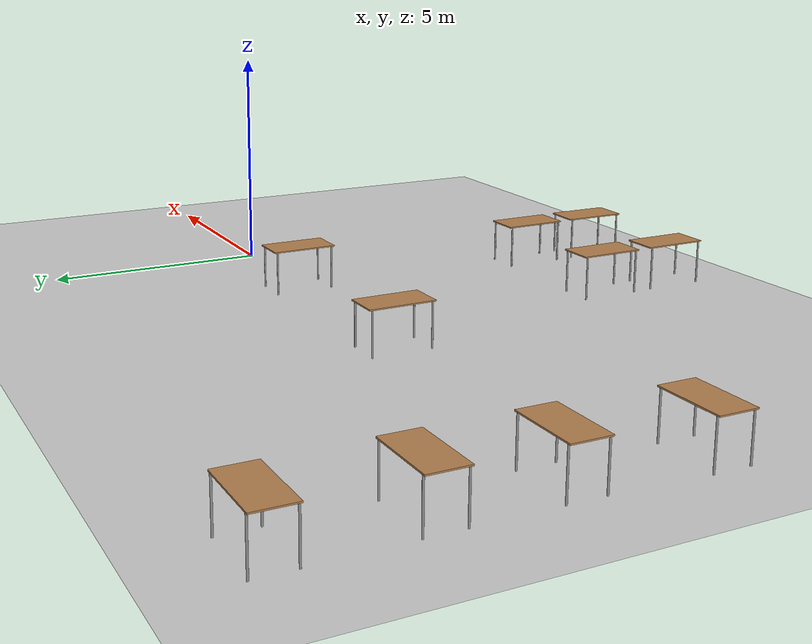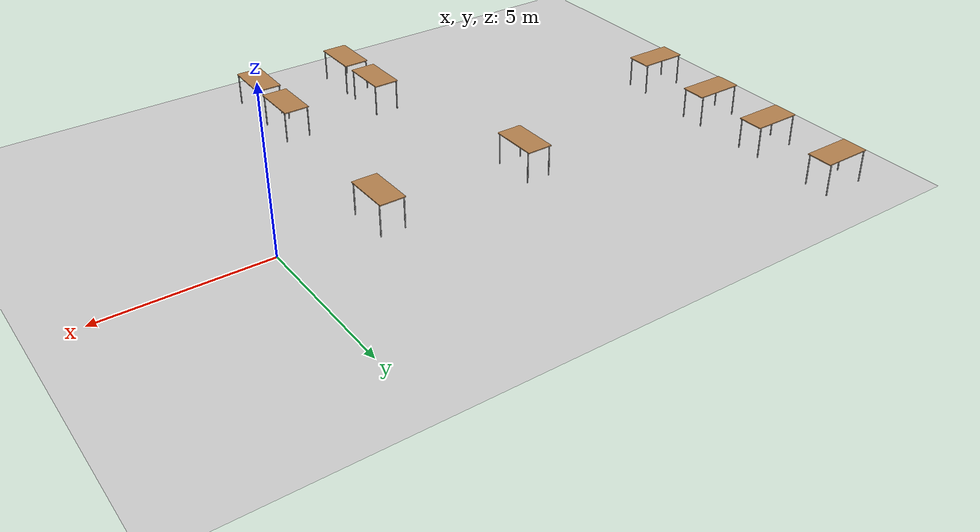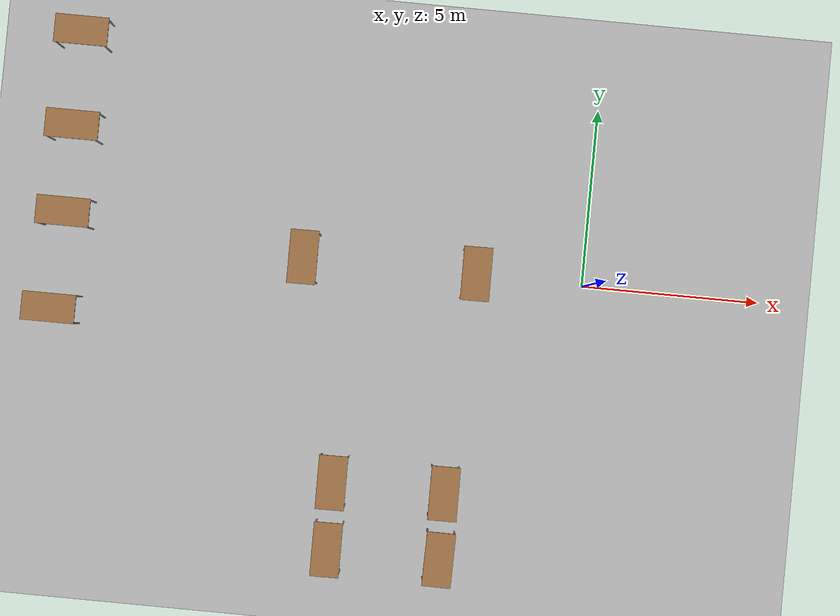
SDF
<sdf version="1.7">
 <world name="default">
  <model name="ground_plane">
   <static>1</static>
   <link name="link">
    <collision name="collision">
     <geometry><plane><normal>0 0 1</normal><size>100 100</size></plane></geometry>
     <surface><friction><ode><mu>100</mu><mu2>50</mu2></ode></friction></surface>
    </collision>
    <visual name="visual">
     <cast_shadows>0</cast_shadows>
     <geometry><plane><normal>0 0 1</normal><size>100 100</size></plane></geometry>
     <material>
      <script><uri>file://media/materials/scripts/gazebo.material</uri><name>Gazebo/Grey</name></script>
     </material>
    </visual>
   </link>
  </model>
  <model name="table">
   <static>1</static>
   <link name="link">
    <collision name="surface">
     <pose>0 0 1 0 -0 0</pose>
     <geometry><box><size>1.5 0.8 0.03</size></box></geometry>
     <surface><friction><ode><mu>0.6</mu><mu2>0.6</mu2></ode></friction></surface>
    </collision>
    <visual name="visual1">
     <pose>0 0 1 0 -0 0</pose>
     <geometry><box><size>1.5 0.8 0.03</size></box></geometry>
     <material>
      <script><uri>file://media/materials/scripts/gazebo.material</uri><name>Gazebo/Wood</name></script>
     </material>
    </visual>
    <collision name="front_left_leg">
     <pose>0.68 0.38 0.5 0 -0 0</pose>
     <geometry><cylinder><radius>0.02</radius><length>1</length></cylinder></geometry>
    </collision>
    <visual name="front_left_leg">
     <pose>0.68 0.38 0.5 0 -0 0</pose>
     <geometry><cylinder><radius>0.02</radius><length>1</length></cylinder></geometry>
     <material>
      <script><uri>file://media/materials/scripts/gazebo.material</uri><name>Gazebo/Grey</name></script>
     </material>
    </visual>
    <collision name="front_right_leg">
     <pose>0.68 -0.38 0.5 0 -0 0</pose>
     <geometry><cylinder><radius>0.02</radius><length>1</length></cylinder></geometry>
    </collision>
    <visual name="front_right_leg">
     <pose>0.68 -0.38 0.5 0 -0 0</pose>
     <geometry><cylinder><radius>0.02</radius><length>1</length></cylinder></geometry>
     <material>
      <script><uri>file://media/materials/scripts/gazebo.material</uri><name>Gazebo/Grey</name></script>
     </material>
    </visual>
    <collision name="back_right_leg">
     <pose>-0.68 -0.38 0.5 0 -0 0</pose>
     <geometry><cylinder><radius>0.02</radius><length>1</length></cylinder></geometry>
    </collision>
    <visual name="back_right_leg">
     <pose>-0.68 -0.38 0.5 0 -0 0</pose>
     <geometry><cylinder><radius>0.02</radius><length>1</length></cylinder></geometry>
     <material>
      <script><uri>file://media/materials/scripts/gazebo.material</uri><name>Gazebo/Grey</name></script>
     </material>
    </visual>
    <collision name="back_left_leg">
     <pose>-0.68 0.38 0.5 0 -0 0</pose>
     <geometry><cylinder><radius>0.02</radius><length>1</length></cylinder></geometry>
    </collision>
    <visual name="back_left_leg">
     <pose>-0.68 0.38 0.5 0 -0 0</pose>
     <geometry><cylinder><radius>0.02</radius><length>1</length></cylinder></geometry>
     <material>
      <script><uri>file://media/materials/scripts/gazebo.material</uri><name>Gazebo/Grey</name></script>
     </material>
    </visual>
   </link>
   <pose>-14.64 5.75533 0 0 -0 0</pose>
  </model>
  <model name="table_clone">
   <static>1</static>
   <link name="link">
    <collision name="surface">
     <pose>0 0 1 0 -0 0</pose>
     <geometry><box><size>1.5 0.8 0.03</size></box></geometry>
     <surface><friction><ode><mu>0.6</mu><mu2>0.6</mu2></ode></friction></surface>
    </collision>
    <visual name="visual1">
     <pose>0 0 1 0 -0 0</pose>
     <geometry><box><size>1.5 0.8 0.03</size></box></geometry>
     <material>
      <script><uri>file://media/materials/scripts/gazebo.material</uri><name>Gazebo/Wood</name></script>
     </material>
    </visual>
    <collision name="front_left_leg">
     <pose>0.68 0.38 0.5 0 -0 0</pose>
     <geometry><cylinder><radius>0.02</radius><length>1</length></cylinder></geometry>
    </collision>
    <visual name="front_left_leg">
     <pose>0.68 0.38 0.5 0 -0 0</pose>
     <geometry><cylinder><radius>0.02</radius><length>1</length></cylinder></geometry>
     <material>
      <script><uri>file://media/materials/scripts/gazebo.material</uri><name>Gazebo/Grey</name></script>
     </material>
    </visual>
    <collision name="front_right_leg">
     <pose>0.68 -0.38 0.5 0 -0 0</pose>
     <geometry><cylinder><radius>0.02</radius><length>1</length></cylinder></geometry>
    </collision>
    <visual name="front_right_leg">
     <pose>0.68 -0.38 0.5 0 -0 0</pose>
     <geometry><cylinder><radius>0.02</radius><length>1</length></cylinder></geometry>
     <material>
      <script><uri>file://media/materials/scripts/gazebo.material</uri><name>Gazebo/Grey</name></script>
     </material>
    </visual>
    <collision name="back_right_leg">
     <pose>-0.68 -0.38 0.5 0 -0 0</pose>
     <geometry><cylinder><radius>0.02</radius><length>1</length></cylinder></geometry>
    </collision>
    <visual name="back_right_leg">
     <pose>-0.68 -0.38 0.5 0 -0 0</pose>
     <geometry><cylinder><radius>0.02</radius><length>1</length></cylinder></geometry>
     <material>
      <script><uri>file://media/materials/scripts/gazebo.material</uri><name>Gazebo/Grey</name></script>
     </material>
    </visual>
    <collision name="back_left_leg">
     <pose>-0.68 0.38 0.5 0 -0 0</pose>
     <geometry><cylinder><radius>0.02</radius><length>1</length></cylinder></geometry>
    </collision>
    <visual name="back_left_leg">
     <pose>-0.68 0.38 0.5 0 -0 0</pose>
     <geometry><cylinder><radius>0.02</radius><length>1</length></cylinder></geometry>
     <material>
      <script><uri>file://media/materials/scripts/gazebo.material</uri><name>Gazebo/Grey</name></script>
     </material>
    </visual>
   </link>
   <pose>-14.6419 3.11969 0 0 -0 0</pose>
  </model>
  <model name="table_clone_0">
   <static>1</static>
   <link name="link">
    <collision name="surface">
     <pose>0 0 1 0 -0 0</pose>
     <geometry><box><size>1.5 0.8 0.03</size></box></geometry>
     <surface><friction><ode><mu>0.6</mu><mu2>0.6</mu2></ode></friction></surface>
    </collision>
    <visual name="visual1">
     <pose>0 0 1 0 -0 0</pose>
     <geometry><box><size>1.5 0.8 0.03</size></box></geometry>
     <material>
      <script><uri>file://media/materials/scripts/gazebo.material</uri><name>Gazebo/Wood</name></script>
     </material>
    </visual>
    <collision name="front_left_leg">
     <pose>0.68 0.38 0.5 0 -0 0</pose>
     <geometry><cylinder><radius>0.02</radius><length>1</length></cylinder></geometry>
    </collision>
    <visual name="front_left_leg">
     <pose>0.68 0.38 0.5 0 -0 0</pose>
     <geometry><cylinder><radius>0.02</radius><length>1</length></cylinder></geometry>
     <material>
      <script><uri>file://media/materials/scripts/gazebo.material</uri><name>Gazebo/Grey</name></script>
     </material>
    </visual>
    <collision name="front_right_leg">
     <pose>0.68 -0.38 0.5 0 -0 0</pose>
     <geometry><cylinder><radius>0.02</radius><length>1</length></cylinder></geometry>
    </collision>
    <visual name="front_right_leg">
     <pose>0.68 -0.38 0.5 0 -0 0</pose>
     <geometry><cylinder><radius>0.02</radius><length>1</length></cylinder></geometry>
     <material>
      <script><uri>file://media/materials/scripts/gazebo.material</uri><name>Gazebo/Grey</name></script>
     </material>
    </visual>
    <collision name="back_right_leg">
     <pose>-0.68 -0.38 0.5 0 -0 0</pose>
     <geometry><cylinder><radius>0.02</radius><length>1</length></cylinder></geometry>
    </collision>
    <visual name="back_right_leg">
     <pose>-0.68 -0.38 0.5 0 -0 0</pose>
     <geometry><cylinder><radius>0.02</radius><length>1</length></cylinder></geometry>
     <material>
      <script><uri>file://media/materials/scripts/gazebo.material</uri><name>Gazebo/Grey</name></script>
     </material>
    </visual>
    <collision name="back_left_leg">
     <pose>-0.68 0.38 0.5 0 -0 0</pose>
     <geometry><cylinder><radius>0.02</radius><length>1</length></cylinder></geometry>
    </collision>
    <visual name="back_left_leg">
     <pose>-0.68 0.38 0.5 0 -0 0</pose>
     <geometry><cylinder><radius>0.02</radius><length>1</length></cylinder></geometry>
     <material>
      <script><uri>file://media/materials/scripts/gazebo.material</uri><name>Gazebo/Grey</name></script>
     </material>
    </visual>
   </link>
   <pose>-14.6602 0.691653 0 0 -0 0</pose>
  </model>
  <model name="table_clone_1">
   <static>1</static>
   <link name="link">
    <collision name="surface">
     <pose>0 0 1 0 -0 0</pose>
     <geometry><box><size>1.5 0.8 0.03</size></box></geometry>
     <surface><friction><ode><mu>0.6</mu><mu2>0.6</mu2></ode></friction></surface>
    </collision>
    <visual name="visual1">
     <pose>0 0 1 0 -0 0</pose>
     <geometry><box><size>1.5 0.8 0.03</size></box></geometry>
     <material>
      <script><uri>file://media/materials/scripts/gazebo.material</uri><name>Gazebo/Wood</name></script>
     </material>
    </visual>
    <collision name="front_left_leg">
     <pose>0.68 0.38 0.5 0 -0 0</pose>
     <geometry><cylinder><radius>0.02</radius><length>1</length></cylinder></geometry>
    </collision>
    <visual name="front_left_leg">
     <pose>0.68 0.38 0.5 0 -0 0</pose>
     <geometry><cylinder><radius>0.02</radius><length>1</length></cylinder></geometry>
     <material>
      <script><uri>file://media/materials/scripts/gazebo.material</uri><name>Gazebo/Grey</name></script>
     </material>
    </visual>
    <collision name="front_right_leg">
     <pose>0.68 -0.38 0.5 0 -0 0</pose>
     <geometry><cylinder><radius>0.02</radius><length>1</length></cylinder></geometry>
    </collision>
    <visual name="front_right_leg">
     <pose>0.68 -0.38 0.5 0 -0 0</pose>
     <geometry><cylinder><radius>0.02</radius><length>1</length></cylinder></geometry>
     <material>
      <script><uri>file://media/materials/scripts/gazebo.material</uri><name>Gazebo/Grey</name></script>
     </material>
    </visual>
    <collision name="back_right_leg">
     <pose>-0.68 -0.38 0.5 0 -0 0</pose>
     <geometry><cylinder><radius>0.02</radius><length>1</length></cylinder></geometry>
    </collision>
    <visual name="back_right_leg">
     <pose>-0.68 -0.38 0.5 0 -0 0</pose>
     <geometry><cylinder><radius>0.02</radius><length>1</length></cylinder></geometry>
     <material>
      <script><uri>file://media/materials/scripts/gazebo.material</uri><name>Gazebo/Grey</name></script>
     </material>
    </visual>
    <collision name="back_left_leg">
     <pose>-0.68 0.38 0.5 0 -0 0</pose>
     <geometry><cylinder><radius>0.02</radius><length>1</length></cylinder></geometry>
    </collision>
    <visual name="back_left_leg">
     <pose>-0.68 0.38 0.5 0 -0 0</pose>
     <geometry><cylinder><radius>0.02</radius><length>1</length></cylinder></geometry>
     <material>
      <script><uri>file://media/materials/scripts/gazebo.material</uri><name>Gazebo/Grey</name></script>
     </material>
    </visual>
   </link>
   <pose>-14.7946 -2.00538 0 0 -0 0</pose>
  </model>
  <model name="table_clone_2">
   <static>1</static>
   <link name="link">
    <collision name="surface">
     <pose>0 0 1 0 -0 0</pose>
     <geometry><box><size>1.5 0.8 0.03</size></box></geometry>
     <surface><friction><ode><mu>0.6</mu><mu2>0.6</mu2></ode></friction></surface>
    </collision>
    <visual name="visual1">
     <pose>0 0 1 0 -0 0</pose>
     <geometry><box><size>1.5 0.8 0.03</size></box></geometry>
     <material>
      <script><uri>file://media/materials/scripts/gazebo.material</uri><name>Gazebo/Wood</name></script>
     </material>
    </visual>
    <collision name="front_left_leg">
     <pose>0.68 0.38 0.5 0 -0 0</pose>
     <geometry><cylinder><radius>0.02</radius><length>1</length></cylinder></geometry>
    </collision>
    <visual name="front_left_leg">
     <pose>0.68 0.38 0.5 0 -0 0</pose>
     <geometry><cylinder><radius>0.02</radius><length>1</length></cylinder></geometry>
     <material>
      <script><uri>file://media/materials/scripts/gazebo.material</uri><name>Gazebo/Grey</name></script>
     </material>
    </visual>
    <collision name="front_right_leg">
     <pose>0.68 -0.38 0.5 0 -0 0</pose>
     <geometry><cylinder><radius>0.02</radius><length>1</length></cylinder></geometry>
    </collision>
    <visual name="front_right_leg">
     <pose>0.68 -0.38 0.5 0 -0 0</pose>
     <geometry><cylinder><radius>0.02</radius><length>1</length></cylinder></geometry>
     <material>
      <script><uri>file://media/materials/scripts/gazebo.material</uri><name>Gazebo/Grey</name></script>
     </material>
    </visual>
    <collision name="back_right_leg">
     <pose>-0.68 -0.38 0.5 0 -0 0</pose>
     <geometry><cylinder><radius>0.02</radius><length>1</length></cylinder></geometry>
    </collision>
    <visual name="back_right_leg">
     <pose>-0.68 -0.38 0.5 0 -0 0</pose>
     <geometry><cylinder><radius>0.02</radius><length>1</length></cylinder></geometry>
     <material>
      <script><uri>file://media/materials/scripts/gazebo.material</uri><name>Gazebo/Grey</name></script>
     </material>
    </visual>
    <collision name="back_left_leg">
     <pose>-0.68 0.38 0.5 0 -0 0</pose>
     <geometry><cylinder><radius>0.02</radius><length>1</length></cylinder></geometry>
    </collision>
    <visual name="back_left_leg">
     <pose>-0.68 0.38 0.5 0 -0 0</pose>
     <geometry><cylinder><radius>0.02</radius><length>1</length></cylinder></geometry>
     <material>
      <script><uri>file://media/materials/scripts/gazebo.material</uri><name>Gazebo/Grey</name></script>
     </material>
    </visual>
   </link>
   <pose>-6.48162 -7.94294 0 0 0 -1.56333</pose>
  </model>
  <model name="table_clone_3">
   <static>1</static>
   <link name="link">
    <collision name="surface">
     <pose>0 0 1 0 -0 0</pose>
     <geometry><box><size>1.5 0.8 0.03</size></box></geometry>
     <surface><friction><ode><mu>0.6</mu><mu2>0.6</mu2></ode></friction></surface>
    </collision>
    <visual name="visual1">
     <pose>0 0 1 0 -0 0</pose>
     <geometry><box><size>1.5 0.8 0.03</size></box></geometry>
     <material>
      <script><uri>file://media/materials/scripts/gazebo.material</uri><name>Gazebo/Wood</name></script>
     </material>
    </visual>
    <collision name="front_left_leg">
     <pose>0.68 0.38 0.5 0 -0 0</pose>
     <geometry><cylinder><radius>0.02</radius><length>1</length></cylinder></geometry>
    </collision>
    <visual name="front_left_leg">
     <pose>0.68 0.38 0.5 0 -0 0</pose>
     <geometry><cylinder><radius>0.02</radius><length>1</length></cylinder></geometry>
     <material>
      <script><uri>file://media/materials/scripts/gazebo.material</uri><name>Gazebo/Grey</name></script>
     </material>
    </visual>
    <collision name="front_right_leg">
     <pose>0.68 -0.38 0.5 0 -0 0</pose>
     <geometry><cylinder><radius>0.02</radius><length>1</length></cylinder></geometry>
    </collision>
    <visual name="front_right_leg">
     <pose>0.68 -0.38 0.5 0 -0 0</pose>
     <geometry><cylinder><radius>0.02</radius><length>1</length></cylinder></geometry>
     <material>
      <script><uri>file://media/materials/scripts/gazebo.material</uri><name>Gazebo/Grey</name></script>
     </material>
    </visual>
    <collision name="back_right_leg">
     <pose>-0.68 -0.38 0.5 0 -0 0</pose>
     <geometry><cylinder><radius>0.02</radius><length>1</length></cylinder></geometry>
    </collision>
    <visual name="back_right_leg">
     <pose>-0.68 -0.38 0.5 0 -0 0</pose>
     <geometry><cylinder><radius>0.02</radius><length>1</length></cylinder></geometry>
     <material>
      <script><uri>file://media/materials/scripts/gazebo.material</uri><name>Gazebo/Grey</name></script>
     </material>
    </visual>
    <collision name="back_left_leg">
     <pose>-0.68 0.38 0.5 0 -0 0</pose>
     <geometry><cylinder><radius>0.02</radius><length>1</length></cylinder></geometry>
    </collision>
    <visual name="back_left_leg">
     <pose>-0.68 0.38 0.5 0 -0 0</pose>
     <geometry><cylinder><radius>0.02</radius><length>1</length></cylinder></geometry>
     <material>
      <script><uri>file://media/materials/scripts/gazebo.material</uri><name>Gazebo/Grey</name></script>
     </material>
    </visual>
   </link>
   <pose>-3.36222 -7.92805 0 0 0 -1.58523</pose>
  </model>
  <model name="table_clone_5_clone_1">
   <static>1</static>
   <link name="link">
    <collision name="surface">
     <pose>0 0 1 0 -0 0</pose>
     <geometry><box><size>1.5 0.8 0.03</size></box></geometry>
     <surface><friction><ode><mu>0.6</mu><mu2>0.6</mu2></ode></friction></surface>
    </collision>
    <visual name="visual1">
     <pose>0 0 1 0 -0 0</pose>
     <geometry><box><size>1.5 0.8 0.03</size></box></geometry>
     <material>
      <script><uri>file://media/materials/scripts/gazebo.material</uri><name>Gazebo/Wood</name></script>
     </material>
    </visual>
    <collision name="front_left_leg">
     <pose>0.68 0.38 0.5 0 -0 0</pose>
     <geometry><cylinder><radius>0.02</radius><length>1</length></cylinder></geometry>
    </collision>
    <visual name="front_left_leg">
     <pose>0.68 0.38 0.5 0 -0 0</pose>
     <geometry><cylinder><radius>0.02</radius><length>1</length></cylinder></geometry>
     <material>
      <script><uri>file://media/materials/scripts/gazebo.material</uri><name>Gazebo/Grey</name></script>
     </material>
    </visual>
    <collision name="front_right_leg">
     <pose>0.68 -0.38 0.5 0 -0 0</pose>
     <geometry><cylinder><radius>0.02</radius><length>1</length></cylinder></geometry>
    </collision>
    <visual name="front_right_leg">
     <pose>0.68 -0.38 0.5 0 -0 0</pose>
     <geometry><cylinder><radius>0.02</radius><length>1</length></cylinder></geometry>
     <material>
      <script><uri>file://media/materials/scripts/gazebo.material</uri><name>Gazebo/Grey</name></script>
     </material>
    </visual>
    <collision name="back_right_leg">
     <pose>-0.68 -0.38 0.5 0 -0 0</pose>
     <geometry><cylinder><radius>0.02</radius><length>1</length></cylinder></geometry>
    </collision>
    <visual name="back_right_leg">
     <pose>-0.68 -0.38 0.5 0 -0 0</pose>
     <geometry><cylinder><radius>0.02</radius><length>1</length></cylinder></geometry>
     <material>
      <script><uri>file://media/materials/scripts/gazebo.material</uri><name>Gazebo/Grey</name></script>
     </material>
    </visual>
    <collision name="back_left_leg">
     <pose>-0.68 0.38 0.5 0 -0 0</pose>
     <geometry><cylinder><radius>0.02</radius><length>1</length></cylinder></geometry>
    </collision>
    <visual name="back_left_leg">
     <pose>-0.68 0.38 0.5 0 -0 0</pose>
     <geometry><cylinder><radius>0.02</radius><length>1</length></cylinder></geometry>
     <material>
      <script><uri>file://media/materials/scripts/gazebo.material</uri><name>Gazebo/Grey</name></script>
     </material>
    </visual>
   </link>
   <pose>-3.38591 -6.10217 0 0 0 -1.56324</pose>
  </model>
  <model name="table_clone_5_clone_2">
   <static>1</static>
   <link name="link">
    <collision name="surface">
     <pose>0 0 1 0 -0 0</pose>
     <geometry><box><size>1.5 0.8 0.03</size></box></geometry>
     <surface><friction><ode><mu>0.6</mu><mu2>0.6</mu2></ode></friction></surface>
    </collision>
    <visual name="visual1">
     <pose>0 0 1 0 -0 0</pose>
     <geometry><box><size>1.5 0.8 0.03</size></box></geometry>
     <material>
      <script><uri>file://media/materials/scripts/gazebo.material</uri><name>Gazebo/Wood</name></script>
     </material>
    </visual>
    <collision name="front_left_leg">
     <pose>0.68 0.38 0.5 0 -0 0</pose>
     <geometry><cylinder><radius>0.02</radius><length>1</length></cylinder></geometry>
    </collision>
    <visual name="front_left_leg">
     <pose>0.68 0.38 0.5 0 -0 0</pose>
     <geometry><cylinder><radius>0.02</radius><length>1</length></cylinder></geometry>
     <material>
      <script><uri>file://media/materials/scripts/gazebo.material</uri><name>Gazebo/Grey</name></script>
     </material>
    </visual>
    <collision name="front_right_leg">
     <pose>0.68 -0.38 0.5 0 -0 0</pose>
     <geometry><cylinder><radius>0.02</radius><length>1</length></cylinder></geometry>
    </collision>
    <visual name="front_right_leg">
     <pose>0.68 -0.38 0.5 0 -0 0</pose>
     <geometry><cylinder><radius>0.02</radius><length>1</length></cylinder></geometry>
     <material>
      <script><uri>file://media/materials/scripts/gazebo.material</uri><name>Gazebo/Grey</name></script>
     </material>
    </visual>
    <collision name="back_right_leg">
     <pose>-0.68 -0.38 0.5 0 -0 0</pose>
     <geometry><cylinder><radius>0.02</radius><length>1</length></cylinder></geometry>
    </collision>
    <visual name="back_right_leg">
     <pose>-0.68 -0.38 0.5 0 -0 0</pose>
     <geometry><cylinder><radius>0.02</radius><length>1</length></cylinder></geometry>
     <material>
      <script><uri>file://media/materials/scripts/gazebo.material</uri><name>Gazebo/Grey</name></script>
     </material>
    </visual>
    <collision name="back_left_leg">
     <pose>-0.68 0.38 0.5 0 -0 0</pose>
     <geometry><cylinder><radius>0.02</radius><length>1</length></cylinder></geometry>
    </collision>
    <visual name="back_left_leg">
     <pose>-0.68 0.38 0.5 0 -0 0</pose>
     <geometry><cylinder><radius>0.02</radius><length>1</length></cylinder></geometry>
     <material>
      <script><uri>file://media/materials/scripts/gazebo.material</uri><name>Gazebo/Grey</name></script>
     </material>
    </visual>
   </link>
   <pose>-6.51259 -6.09178 0 0 0 -1.56324</pose>
  </model>
  <model name="table_clone_5_clone_clone_clone_2">
   <static>1</static>
   <link name="link">
    <collision name="surface">
     <pose>0 0 1 0 -0 0</pose>
     <geometry><box><size>1.5 0.8 0.03</size></box></geometry>
     <surface><friction><ode><mu>0.6</mu><mu2>0.6</mu2></ode></friction></surface>
    </collision>
    <visual name="visual1">
     <pose>0 0 1 0 -0 0</pose>
     <geometry><box><size>1.5 0.8 0.03</size></box></geometry>
     <material>
      <script><uri>file://media/materials/scripts/gazebo.material</uri><name>Gazebo/Wood</name></script>
     </material>
    </visual>
    <collision name="front_left_leg">
     <pose>0.68 0.38 0.5 0 -0 0</pose>
     <geometry><cylinder><radius>0.02</radius><length>1</length></cylinder></geometry>
    </collision>
    <visual name="front_left_leg">
     <pose>0.68 0.38 0.5 0 -0 0</pose>
     <geometry><cylinder><radius>0.02</radius><length>1</length></cylinder></geometry>
     <material>
      <script><uri>file://media/materials/scripts/gazebo.material</uri><name>Gazebo/Grey</name></script>
     </material>
    </visual>
    <collision name="front_right_leg">
     <pose>0.68 -0.38 0.5 0 -0 0</pose>
     <geometry><cylinder><radius>0.02</radius><length>1</length></cylinder></geometry>
    </collision>
    <visual name="front_right_leg">
     <pose>0.68 -0.38 0.5 0 -0 0</pose>
     <geometry><cylinder><radius>0.02</radius><length>1</length></cylinder></geometry>
     <material>
      <script><uri>file://media/materials/scripts/gazebo.material</uri><name>Gazebo/Grey</name></script>
     </material>
    </visual>
    <collision name="back_right_leg">
     <pose>-0.68 -0.38 0.5 0 -0 0</pose>
     <geometry><cylinder><radius>0.02</radius><length>1</length></cylinder></geometry>
    </collision>
    <visual name="back_right_leg">
     <pose>-0.68 -0.38 0.5 0 -0 0</pose>
     <geometry><cylinder><radius>0.02</radius><length>1</length></cylinder></geometry>
     <material>
      <script><uri>file://media/materials/scripts/gazebo.material</uri><name>Gazebo/Grey</name></script>
     </material>
    </visual>
    <collision name="back_left_leg">
     <pose>-0.68 0.38 0.5 0 -0 0</pose>
     <geometry><cylinder><radius>0.02</radius><length>1</length></cylinder></geometry>
    </collision>
    <visual name="back_left_leg">
     <pose>-0.68 0.38 0.5 0 -0 0</pose>
     <geometry><cylinder><radius>0.02</radius><length>1</length></cylinder></geometry>
     <material>
      <script><uri>file://media/materials/scripts/gazebo.material</uri><name>Gazebo/Grey</name></script>
     </material>
    </visual>
   </link>
   <pose>-3.05876 0.036965 0 0 0 -1.56324</pose>
  </model>
  <model name="table_clone_5_clone_clone_clone_3">
   <static>1</static>
   <link name="link">
    <collision name="surface">
     <pose>0 0 1 0 -0 0</pose>
     <geometry><box><size>1.5 0.8 0.03</size></box></geometry>
     <surface><friction><ode><mu>0.6</mu><mu2>0.6</mu2></ode></friction></surface>
    </collision>
    <visual name="visual1">
     <pose>0 0 1 0 -0 0</pose>
     <geometry><box><size>1.5 0.8 0.03</size></box></geometry>
     <material>
      <script><uri>file://media/materials/scripts/gazebo.material</uri><name>Gazebo/Wood</name></script>
     </material>
    </visual>
    <collision name="front_left_leg">
     <pose>0.68 0.38 0.5 0 -0 0</pose>
     <geometry><cylinder><radius>0.02</radius><length>1</length></cylinder></geometry>
    </collision>
    <visual name="front_left_leg">
     <pose>0.68 0.38 0.5 0 -0 0</pose>
     <geometry><cylinder><radius>0.02</radius><length>1</length></cylinder></geometry>
     <material>
      <script><uri>file://media/materials/scripts/gazebo.material</uri><name>Gazebo/Grey</name></script>
     </material>
    </visual>
    <collision name="front_right_leg">
     <pose>0.68 -0.38 0.5 0 -0 0</pose>
     <geometry><cylinder><radius>0.02</radius><length>1</length></cylinder></geometry>
    </collision>
    <visual name="front_right_leg">
     <pose>0.68 -0.38 0.5 0 -0 0</pose>
     <geometry><cylinder><radius>0.02</radius><length>1</length></cylinder></geometry>
     <material>
      <script><uri>file://media/materials/scripts/gazebo.material</uri><name>Gazebo/Grey</name></script>
     </material>
    </visual>
    <collision name="back_right_leg">
     <pose>-0.68 -0.38 0.5 0 -0 0</pose>
     <geometry><cylinder><radius>0.02</radius><length>1</length></cylinder></geometry>
    </collision>
    <visual name="back_right_leg">
     <pose>-0.68 -0.38 0.5 0 -0 0</pose>
     <geometry><cylinder><radius>0.02</radius><length>1</length></cylinder></geometry>
     <material>
      <script><uri>file://media/materials/scripts/gazebo.material</uri><name>Gazebo/Grey</name></script>
     </material>
    </visual>
    <collision name="back_left_leg">
     <pose>-0.68 0.38 0.5 0 -0 0</pose>
     <geometry><cylinder><radius>0.02</radius><length>1</length></cylinder></geometry>
    </collision>
    <visual name="back_left_leg">
     <pose>-0.68 0.38 0.5 0 -0 0</pose>
     <geometry><cylinder><radius>0.02</radius><length>1</length></cylinder></geometry>
     <material>
      <script><uri>file://media/materials/scripts/gazebo.material</uri><name>Gazebo/Grey</name></script>
     </material>
    </visual>
   </link>
   <pose>-7.89536 0.053453 0 0 0 -1.56324</pose>
  </model>
 </world>
</sdf>
